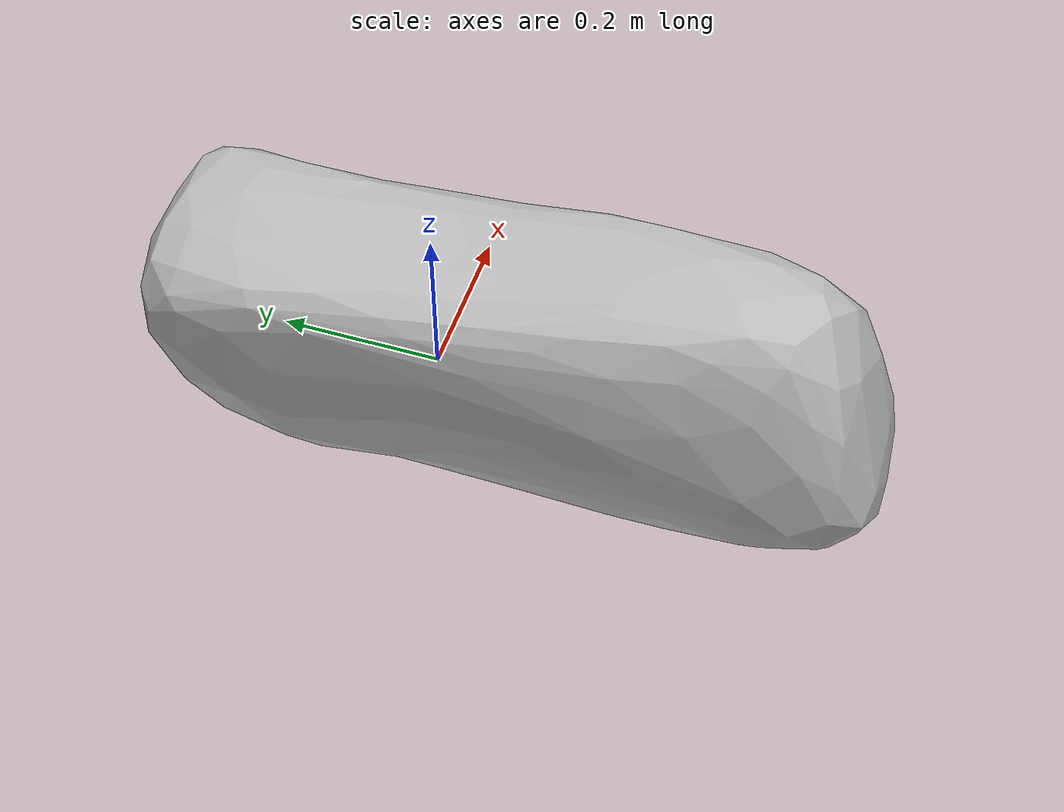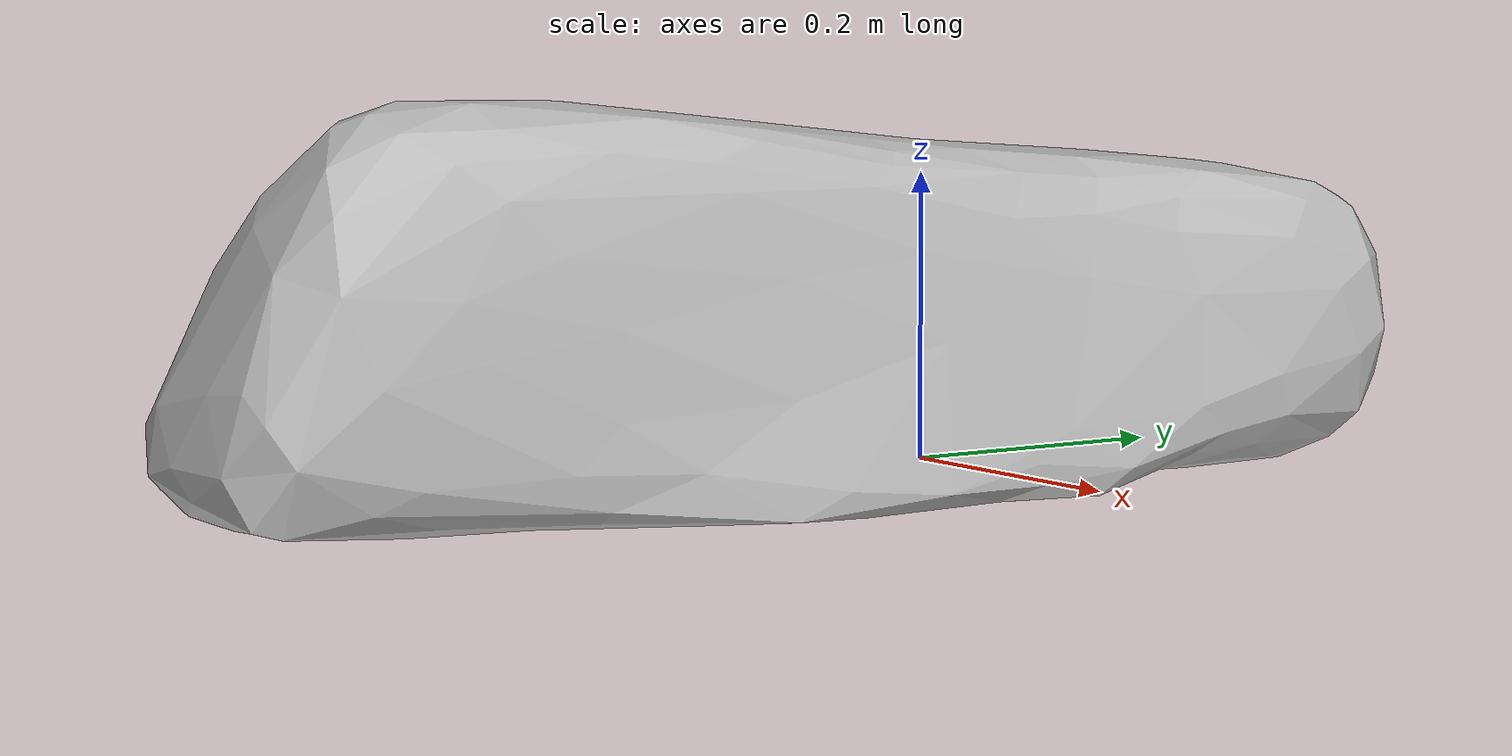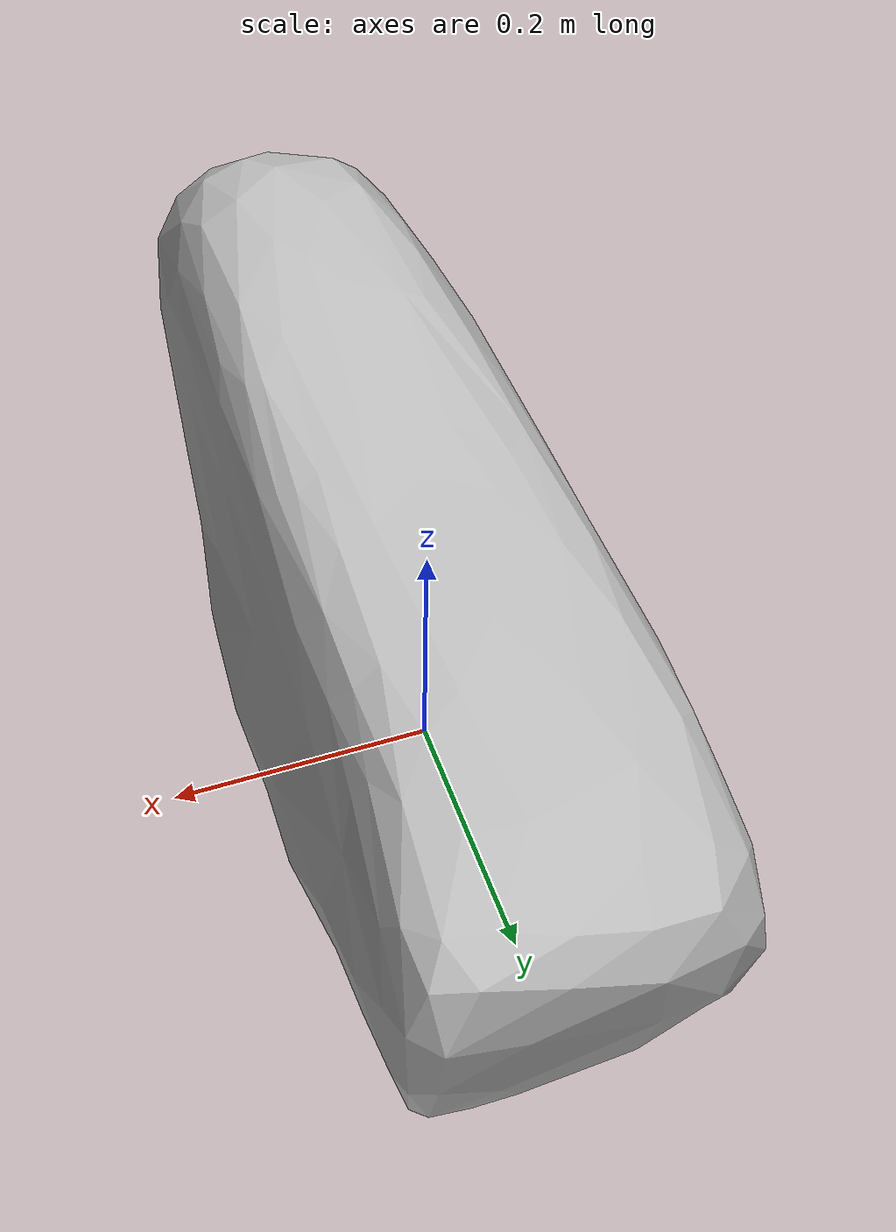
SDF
<?xml version="1.0"?>
<sdf version="1.7">
  <model name="rock1">
    <static>true</static>
    <link name="main_link">
      <collision name="plane_collision">
        <geometry>
          <mesh>
            <uri>model://rock1/meshes/rock1.dae</uri>
          </mesh>
        </geometry>
      </collision>
      <visual name="plane_visual">
        <geometry>
          <mesh>
            <uri>model://rock1/meshes/rock1.dae</uri>
          </mesh>
        </geometry>
        <material>
          <script>
            <uri>model://rock1/materials/scripts</uri>
            <uri>model://rock1/materials/textures</uri>
            <name>Rock1/Material</name>
          </script>
        </material>
      </visual>
    </link>
  </model>
</sdf>
